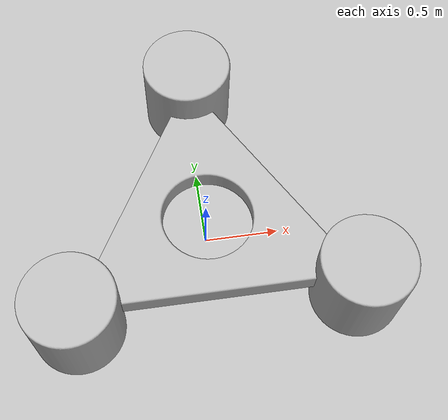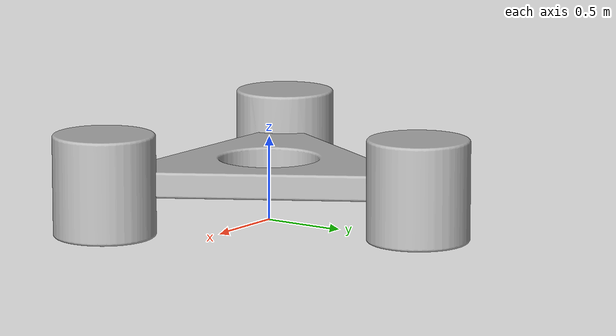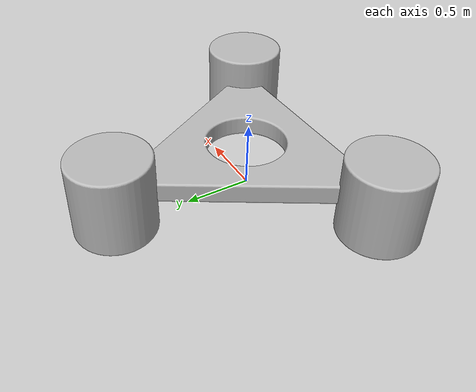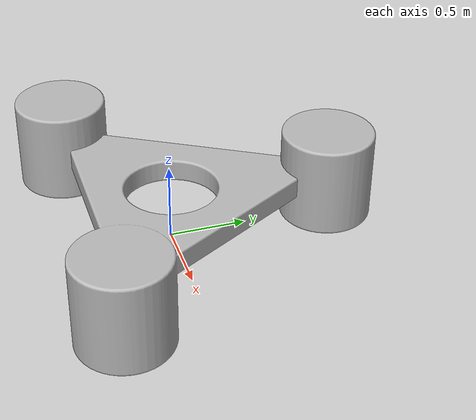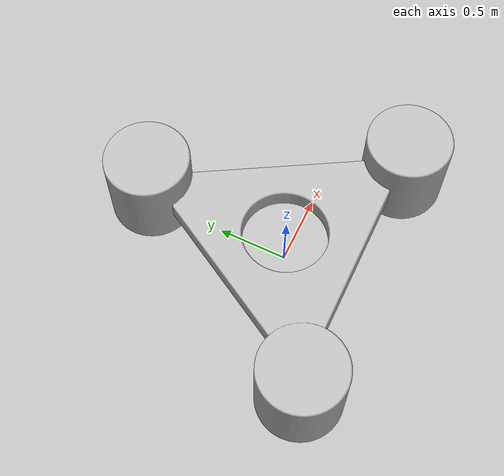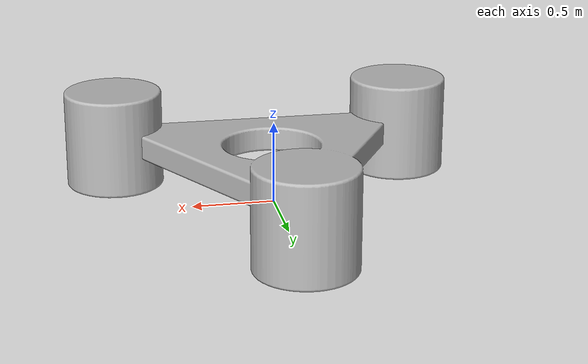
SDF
<?xml version="1.0"?>
<sdf version="1.4">
  <model name="obstaculo">
    <pose>0 0 0 0 0 0</pose>
    <static>false</static>
    <link name="link">
      <inertial>
        <mass>1.0</mass>
        <inertia>
          <ixx>0.083</ixx>
          <ixy>0.0</ixy>
          <ixz>0.0</ixz>
          <iyy>0.083</iyy>
          <iyz>0.0</iyz>
          <izz>0.083</izz>
        </inertia>
      </inertial>
      <collision name="collision">
        <pose>-1.209 -0.825 0 0 0 0</pose>
        <geometry>
          <mesh>
            <uri>model://obstaculo/meshes/Obstaculo.STL</uri>
          </mesh>
        </geometry>
      </collision>
      <visual name="visual">
        <pose>-1.209 -0.825 0 0 0 0</pose>
        <geometry>
          <mesh>
            <uri>model://obstaculo/meshes/Obstaculo.STL</uri>
          </mesh>
        </geometry>
      </visual>
    </link>
  </model>
</sdf>
